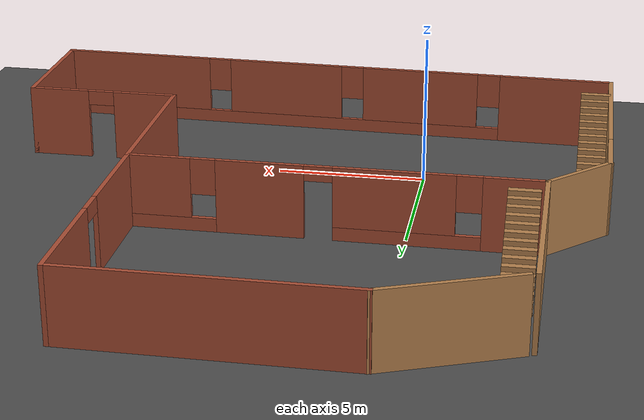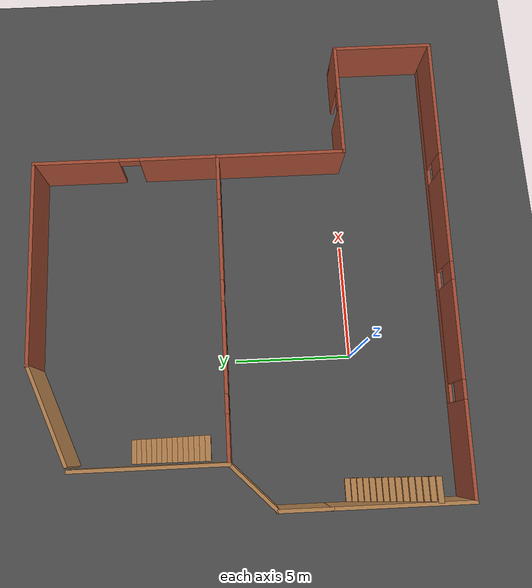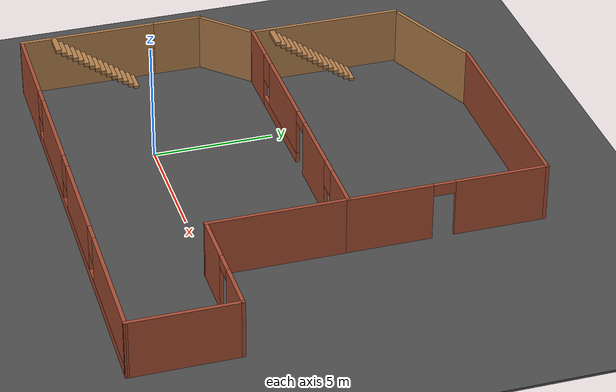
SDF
<sdf version="1.6">
 <world name="default">
  <light name="sun" type="directional">
   <pose>0 0 10 0 -0 0</pose>
   <diffuse>0.8 0.8 0.8 1</diffuse>
   <specular>0.2 0.2 0.2 1</specular>
   <attenuation>
    <range>1000</range>
    <constant>0.9</constant>
    <linear>0.01</linear>
    <quadratic>0.001</quadratic>
   </attenuation>
   <direction>-0.5 0.1 -0.9</direction>
  </light>
  <model name="ground_plane">
   <static>1</static>
   <link name="link">
    <collision name="collision">
     <geometry><plane><normal>0 0 1</normal><size>100 100</size></plane></geometry>
     <surface>
      <contact><collide_bitmask>65535</collide_bitmask></contact>
      <friction><ode><mu>100</mu><mu2>50</mu2></ode></friction>
     </surface>
    </collision>
    <visual name="visual">
     <cast_shadows>0</cast_shadows>
     <geometry><plane><normal>0 0 1</normal><size>100 100</size></plane></geometry>
     <material>
      <script><uri>file://media/materials/scripts/gazebo.material</uri><name>Gazebo/Grey</name></script>
     </material>
    </visual>
   </link>
  </model>
  <model name="asphalt_plane">
   <static>1</static>
   <link name="link">
    <collision name="collision"><geometry><box><size>200 200 0.1</size></box></geometry></collision>
    <visual name="visual">
     <cast_shadows>0</cast_shadows>
     <geometry><box><size>200 200 0.1</size></box></geometry>
     <material>
      <script>
       <uri>model://asphalt_plane/materials/scripts</uri>
       <uri>model://asphalt_plane/materials/textures</uri>
       <name>vrc/asphalt</name>
      </script>
     </material>
    </visual>
   </link>
  </model>
  <physics name="default_physics" default="0" type="ode">
   <ode>
    <solver>
     <type>quick</type>
     <iters>10</iters>
     <sor>1.3</sor>
     <use_dynamic_moi_rescaling>0</use_dynamic_moi_rescaling>
    </solver>
    <constraints>
     <cfm>0</cfm>
     <erp>0.2</erp>
     <contact_max_correcting_vel>100</contact_max_correcting_vel>
     <contact_surface_layer>0.001</contact_surface_layer>
    </constraints>
   </ode>
   <max_step_size>0.004</max_step_size>
   <real_time_factor>1</real_time_factor>
   <real_time_update_rate>250</real_time_update_rate>
  </physics>
  <gravity>0 0 -9.8066</gravity>
  <magnetic_field>6e-06 2.3e-05 -4.2e-05</magnetic_field>
  <atmosphere type="adiabatic"/>
  <scene><ambient>0.4 0.4 0.4 1</ambient><background>0.7 0.7 0.7 1</background><shadows>1</shadows></scene>
  <spherical_coordinates>
   <surface_model>EARTH_WGS84</surface_model>
   <latitude_deg>0</latitude_deg>
   <longitude_deg>0</longitude_deg>
   <elevation>0</elevation>
   <heading_deg>0</heading_deg>
  </spherical_coordinates>
  <model name="Mundo_pequeno">
   <pose>3.84432 4.52778 0 0 -0 0</pose>
   <link name="Stairs_1">
    <visual name="Stairs_1_Visual_0">
     <pose>-7.50565 4.98845 0.083333 0 -0 0</pose>
     <geometry><box><size>1 0.233333 0.166667</size></box></geometry>
     <material>
      <script><uri>file://media/materials/scripts/gazebo.material</uri><name>Gazebo/Wood</name></script>
      <ambient>1 1 1 1</ambient>
     </material>
     <meta><layer>0</layer></meta>
    </visual>
    <collision name="Stairs_1_Collision_0">
     <geometry><box><size>1 0.233333 0.166667</size></box></geometry>
     <pose>-7.50565 4.98845 0.083333 0 -0 0</pose>
    </collision>
    <visual name="Stairs_1_Visual_1">
     <pose>-7.50565 4.75511 0.25 0 -0 0</pose>
     <geometry><box><size>1 0.233333 0.166667</size></box></geometry>
     <material>
      <script><uri>file://media/materials/scripts/gazebo.material</uri><name>Gazebo/Wood</name></script>
      <ambient>1 1 1 1</ambient>
     </material>
     <meta><layer>0</layer></meta>
    </visual>
    <collision name="Stairs_1_Collision_1">
     <geometry><box><size>1 0.233333 0.166667</size></box></geometry>
     <pose>-7.50565 4.75511 0.25 0 -0 0</pose>
    </collision>
    <visual name="Stairs_1_Visual_2">
     <pose>-7.50565 4.52178 0.416667 0 -0 0</pose>
     <geometry><box><size>1 0.233333 0.166667</size></box></geometry>
     <material>
      <script><uri>file://media/materials/scripts/gazebo.material</uri><name>Gazebo/Wood</name></script>
      <ambient>1 1 1 1</ambient>
     </material>
     <meta><layer>0</layer></meta>
    </visual>
    <collision name="Stairs_1_Collision_2">
     <geometry><box><size>1 0.233333 0.166667</size></box></geometry>
     <pose>-7.50565 4.52178 0.416667 0 -0 0</pose>
    </collision>
    <visual name="Stairs_1_Visual_3">
     <pose>-7.50565 4.28845 0.583333 0 -0 0</pose>
     <geometry><box><size>1 0.233333 0.166667</size></box></geometry>
     <material>
      <script><uri>file://media/materials/scripts/gazebo.material</uri><name>Gazebo/Wood</name></script>
      <ambient>1 1 1 1</ambient>
     </material>
     <meta><layer>0</layer></meta>
    </visual>
    <collision name="Stairs_1_Collision_3">
     <geometry><box><size>1 0.233333 0.166667</size></box></geometry>
     <pose>-7.50565 4.28845 0.583333 0 -0 0</pose>
    </collision>
    <visual name="Stairs_1_Visual_4">
     <pose>-7.50565 4.05511 0.75 0 -0 0</pose>
     <geometry><box><size>1 0.233333 0.166667</size></box></geometry>
     <material>
      <script><uri>file://media/materials/scripts/gazebo.material</uri><name>Gazebo/Wood</name></script>
      <ambient>1 1 1 1</ambient>
     </material>
     <meta><layer>0</layer></meta>
    </visual>
    <collision name="Stairs_1_Collision_4">
     <geometry><box><size>1 0.233333 0.166667</size></box></geometry>
     <pose>-7.50565 4.05511 0.75 0 -0 0</pose>
    </collision>
    <visual name="Stairs_1_Visual_5">
     <pose>-7.50565 3.82178 0.916667 0 -0 0</pose>
     <geometry><box><size>1 0.233333 0.166667</size></box></geometry>
     <material>
      <script><uri>file://media/materials/scripts/gazebo.material</uri><name>Gazebo/Wood</name></script>
      <ambient>1 1 1 1</ambient>
     </material>
     <meta><layer>0</layer></meta>
    </visual>
    <collision name="Stairs_1_Collision_5">
     <geometry><box><size>1 0.233333 0.166667</size></box></geometry>
     <pose>-7.50565 3.82178 0.916667 0 -0 0</pose>
    </collision>
    <visual name="Stairs_1_Visual_6">
     <pose>-7.50565 3.58845 1.08333 0 -0 0</pose>
     <geometry><box><size>1 0.233333 0.166667</size></box></geometry>
     <material>
      <script><uri>file://media/materials/scripts/gazebo.material</uri><name>Gazebo/Wood</name></script>
      <ambient>1 1 1 1</ambient>
     </material>
     <meta><layer>0</layer></meta>
    </visual>
    <collision name="Stairs_1_Collision_6">
     <geometry><box><size>1 0.233333 0.166667</size></box></geometry>
     <pose>-7.50565 3.58845 1.08333 0 -0 0</pose>
    </collision>
    <visual name="Stairs_1_Visual_7">
     <pose>-7.50565 3.35511 1.25 0 -0 0</pose>
     <geometry><box><size>1 0.233333 0.166667</size></box></geometry>
     <material>
      <script><uri>file://media/materials/scripts/gazebo.material</uri><name>Gazebo/Wood</name></script>
      <ambient>1 1 1 1</ambient>
     </material>
     <meta><layer>0</layer></meta>
    </visual>
    <collision name="Stairs_1_Collision_7">
     <geometry><box><size>1 0.233333 0.166667</size></box></geometry>
     <pose>-7.50565 3.35511 1.25 0 -0 0</pose>
    </collision>
    <visual name="Stairs_1_Visual_8">
     <pose>-7.50565 3.12178 1.41667 0 -0 0</pose>
     <geometry><box><size>1 0.233333 0.166667</size></box></geometry>
     <material>
      <script><uri>file://media/materials/scripts/gazebo.material</uri><name>Gazebo/Wood</name></script>
      <ambient>1 1 1 1</ambient>
     </material>
     <meta><layer>0</layer></meta>
    </visual>
    <collision name="Stairs_1_Collision_8">
     <geometry><box><size>1 0.233333 0.166667</size></box></geometry>
     <pose>-7.50565 3.12178 1.41667 0 -0 0</pose>
    </collision>
    <visual name="Stairs_1_Visual_9">
     <pose>-7.50565 2.88845 1.58333 0 -0 0</pose>
     <geometry><box><size>1 0.233333 0.166667</size></box></geometry>
     <material>
      <script><uri>file://media/materials/scripts/gazebo.material</uri><name>Gazebo/Wood</name></script>
      <ambient>1 1 1 1</ambient>
     </material>
     <meta><layer>0</layer></meta>
    </visual>
    <collision name="Stairs_1_Collision_9">
     <geometry><box><size>1 0.233333 0.166667</size></box></geometry>
     <pose>-7.50565 2.88845 1.58333 0 -0 0</pose>
    </collision>
    <visual name="Stairs_1_Visual_10">
     <pose>-7.50565 2.65511 1.75 0 -0 0</pose>
     <geometry><box><size>1 0.233333 0.166667</size></box></geometry>
     <material>
      <script><uri>file://media/materials/scripts/gazebo.material</uri><name>Gazebo/Wood</name></script>
      <ambient>1 1 1 1</ambient>
     </material>
     <meta><layer>0</layer></meta>
    </visual>
    <collision name="Stairs_1_Collision_10">
     <geometry><box><size>1 0.233333 0.166667</size></box></geometry>
     <pose>-7.50565 2.65511 1.75 0 -0 0</pose>
    </collision>
    <visual name="Stairs_1_Visual_11">
     <pose>-7.50565 2.42178 1.91667 0 -0 0</pose>
     <geometry><box><size>1 0.233333 0.166667</size></box></geometry>
     <material>
      <script><uri>file://media/materials/scripts/gazebo.material</uri><name>Gazebo/Wood</name></script>
      <ambient>1 1 1 1</ambient>
     </material>
     <meta><layer>0</layer></meta>
    </visual>
    <collision name="Stairs_1_Collision_11">
     <geometry><box><size>1 0.233333 0.166667</size></box></geometry>
     <pose>-7.50565 2.42178 1.91667 0 -0 0</pose>
    </collision>
    <visual name="Stairs_1_Visual_12">
     <pose>-7.50565 2.18845 2.08333 0 -0 0</pose>
     <geometry><box><size>1 0.233333 0.166667</size></box></geometry>
     <material>
      <script><uri>file://media/materials/scripts/gazebo.material</uri><name>Gazebo/Wood</name></script>
      <ambient>1 1 1 1</ambient>
     </material>
     <meta><layer>0</layer></meta>
    </visual>
    <collision name="Stairs_1_Collision_12">
     <geometry><box><size>1 0.233333 0.166667</size></box></geometry>
     <pose>-7.50565 2.18845 2.08333 0 -0 0</pose>
    </collision>
    <visual name="Stairs_1_Visual_13">
     <pose>-7.50565 1.95511 2.25 0 -0 0</pose>
     <geometry><box><size>1 0.233333 0.166667</size></box></geometry>
     <material>
      <script><uri>file://media/materials/scripts/gazebo.material</uri><name>Gazebo/Wood</name></script>
      <ambient>1 1 1 1</ambient>
     </material>
     <meta><layer>0</layer></meta>
    </visual>
    <collision name="Stairs_1_Collision_13">
     <geometry><box><size>1 0.233333 0.166667</size></box></geometry>
     <pose>-7.50565 1.95511 2.25 0 -0 0</pose>
    </collision>
    <visual name="Stairs_1_Visual_14">
     <pose>-7.50565 1.72178 2.41667 0 -0 0</pose>
     <geometry><box><size>1 0.233333 0.166667</size></box></geometry>
     <material>
      <script><uri>file://media/materials/scripts/gazebo.material</uri><name>Gazebo/Wood</name></script>
      <ambient>1 1 1 1</ambient>
     </material>
     <meta><layer>0</layer></meta>
    </visual>
    <collision name="Stairs_1_Collision_14">
     <geometry><box><size>1 0.233333 0.166667</size></box></geometry>
     <pose>-7.50565 1.72178 2.41667 0 -0 0</pose>
    </collision>
   </link>
   <link name="Stairs_2">
    <visual name="Stairs_2_Visual_0">
     <pose>-9.48524 -3.99997 0.083333 0 -0 0</pose>
     <geometry><box><size>1 0.233333 0.166667</size></box></geometry>
     <material>
      <script><uri>file://media/materials/scripts/gazebo.material</uri><name>Gazebo/Wood</name></script>
      <ambient>1 1 1 1</ambient>
     </material>
     <meta><layer>0</layer></meta>
    </visual>
    <collision name="Stairs_2_Collision_0">
     <geometry><box><size>1 0.233333 0.166667</size></box></geometry>
     <pose>-9.48524 -3.99997 0.083333 0 -0 0</pose>
    </collision>
    <visual name="Stairs_2_Visual_1">
     <pose>-9.48524 -4.23331 0.25 0 -0 0</pose>
     <geometry><box><size>1 0.233333 0.166667</size></box></geometry>
     <material>
      <script><uri>file://media/materials/scripts/gazebo.material</uri><name>Gazebo/Wood</name></script>
      <ambient>1 1 1 1</ambient>
     </material>
     <meta><layer>0</layer></meta>
    </visual>
    <collision name="Stairs_2_Collision_1">
     <geometry><box><size>1 0.233333 0.166667</size></box></geometry>
     <pose>-9.48524 -4.23331 0.25 0 -0 0</pose>
    </collision>
    <visual name="Stairs_2_Visual_2">
     <pose>-9.48524 -4.46664 0.416667 0 -0 0</pose>
     <geometry><box><size>1 0.233333 0.166667</size></box></geometry>
     <material>
      <script><uri>file://media/materials/scripts/gazebo.material</uri><name>Gazebo/Wood</name></script>
      <ambient>1 1 1 1</ambient>
     </material>
     <meta><layer>0</layer></meta>
    </visual>
    <collision name="Stairs_2_Collision_2">
     <geometry><box><size>1 0.233333 0.166667</size></box></geometry>
     <pose>-9.48524 -4.46664 0.416667 0 -0 0</pose>
    </collision>
    <visual name="Stairs_2_Visual_3">
     <pose>-9.48524 -4.69997 0.583333 0 -0 0</pose>
     <geometry><box><size>1 0.233333 0.166667</size></box></geometry>
     <material>
      <script><uri>file://media/materials/scripts/gazebo.material</uri><name>Gazebo/Wood</name></script>
      <ambient>1 1 1 1</ambient>
     </material>
     <meta><layer>0</layer></meta>
    </visual>
    <collision name="Stairs_2_Collision_3">
     <geometry><box><size>1 0.233333 0.166667</size></box></geometry>
     <pose>-9.48524 -4.69997 0.583333 0 -0 0</pose>
    </collision>
    <visual name="Stairs_2_Visual_4">
     <pose>-9.48524 -4.93331 0.75 0 -0 0</pose>
     <geometry><box><size>1 0.233333 0.166667</size></box></geometry>
     <material>
      <script><uri>file://media/materials/scripts/gazebo.material</uri><name>Gazebo/Wood</name></script>
      <ambient>1 1 1 1</ambient>
     </material>
     <meta><layer>0</layer></meta>
    </visual>
    <collision name="Stairs_2_Collision_4">
     <geometry><box><size>1 0.233333 0.166667</size></box></geometry>
     <pose>-9.48524 -4.93331 0.75 0 -0 0</pose>
    </collision>
    <visual name="Stairs_2_Visual_5">
     <pose>-9.48524 -5.16664 0.916667 0 -0 0</pose>
     <geometry><box><size>1 0.233333 0.166667</size></box></geometry>
     <material>
      <script><uri>file://media/materials/scripts/gazebo.material</uri><name>Gazebo/Wood</name></script>
      <ambient>1 1 1 1</ambient>
     </material>
     <meta><layer>0</layer></meta>
    </visual>
    <collision name="Stairs_2_Collision_5">
     <geometry><box><size>1 0.233333 0.166667</size></box></geometry>
     <pose>-9.48524 -5.16664 0.916667 0 -0 0</pose>
    </collision>
    <visual name="Stairs_2_Visual_6">
     <pose>-9.48524 -5.39997 1.08333 0 -0 0</pose>
     <geometry><box><size>1 0.233333 0.166667</size></box></geometry>
     <material>
      <script><uri>file://media/materials/scripts/gazebo.material</uri><name>Gazebo/Wood</name></script>
      <ambient>1 1 1 1</ambient>
     </material>
     <meta><layer>0</layer></meta>
    </visual>
    <collision name="Stairs_2_Collision_6">
     <geometry><box><size>1 0.233333 0.166667</size></box></geometry>
     <pose>-9.48524 -5.39997 1.08333 0 -0 0</pose>
    </collision>
    <visual name="Stairs_2_Visual_7">
     <pose>-9.48524 -5.63331 1.25 0 -0 0</pose>
     <geometry><box><size>1 0.233333 0.166667</size></box></geometry>
     <material>
      <script><uri>file://media/materials/scripts/gazebo.material</uri><name>Gazebo/Wood</name></script>
      <ambient>1 1 1 1</ambient>
     </material>
     <meta><layer>0</layer></meta>
    </visual>
    <collision name="Stairs_2_Collision_7">
     <geometry><box><size>1 0.233333 0.166667</size></box></geometry>
     <pose>-9.48524 -5.63331 1.25 0 -0 0</pose>
    </collision>
    <visual name="Stairs_2_Visual_8">
     <pose>-9.48524 -5.86664 1.41667 0 -0 0</pose>
     <geometry><box><size>1 0.233333 0.166667</size></box></geometry>
     <material>
      <script><uri>file://media/materials/scripts/gazebo.material</uri><name>Gazebo/Wood</name></script>
      <ambient>1 1 1 1</ambient>
     </material>
     <meta><layer>0</layer></meta>
    </visual>
    <collision name="Stairs_2_Collision_8">
     <geometry><box><size>1 0.233333 0.166667</size></box></geometry>
     <pose>-9.48524 -5.86664 1.41667 0 -0 0</pose>
    </collision>
    <visual name="Stairs_2_Visual_9">
     <pose>-9.48524 -6.09997 1.58333 0 -0 0</pose>
     <geometry><box><size>1 0.233333 0.166667</size></box></geometry>
     <material>
      <script><uri>file://media/materials/scripts/gazebo.material</uri><name>Gazebo/Wood</name></script>
      <ambient>1 1 1 1</ambient>
     </material>
     <meta><layer>0</layer></meta>
    </visual>
    <collision name="Stairs_2_Collision_9">
     <geometry><box><size>1 0.233333 0.166667</size></box></geometry>
     <pose>-9.48524 -6.09997 1.58333 0 -0 0</pose>
    </collision>
    <visual name="Stairs_2_Visual_10">
     <pose>-9.48524 -6.33331 1.75 0 -0 0</pose>
     <geometry><box><size>1 0.233333 0.166667</size></box></geometry>
     <material>
      <script><uri>file://media/materials/scripts/gazebo.material</uri><name>Gazebo/Wood</name></script>
      <ambient>1 1 1 1</ambient>
     </material>
     <meta><layer>0</layer></meta>
    </visual>
    <collision name="Stairs_2_Collision_10">
     <geometry><box><size>1 0.233333 0.166667</size></box></geometry>
     <pose>-9.48524 -6.33331 1.75 0 -0 0</pose>
    </collision>
    <visual name="Stairs_2_Visual_11">
     <pose>-9.48524 -6.56664 1.91667 0 -0 0</pose>
     <geometry><box><size>1 0.233333 0.166667</size></box></geometry>
     <material>
      <script><uri>file://media/materials/scripts/gazebo.material</uri><name>Gazebo/Wood</name></script>
      <ambient>1 1 1 1</ambient>
     </material>
     <meta><layer>0</layer></meta>
    </visual>
    <collision name="Stairs_2_Collision_11">
     <geometry><box><size>1 0.233333 0.166667</size></box></geometry>
     <pose>-9.48524 -6.56664 1.91667 0 -0 0</pose>
    </collision>
    <visual name="Stairs_2_Visual_12">
     <pose>-9.48524 -6.79997 2.08333 0 -0 0</pose>
     <geometry><box><size>1 0.233333 0.166667</size></box></geometry>
     <material>
      <script><uri>file://media/materials/scripts/gazebo.material</uri><name>Gazebo/Wood</name></script>
      <ambient>1 1 1 1</ambient>
     </material>
     <meta><layer>0</layer></meta>
    </visual>
    <collision name="Stairs_2_Collision_12">
     <geometry><box><size>1 0.233333 0.166667</size></box></geometry>
     <pose>-9.48524 -6.79997 2.08333 0 -0 0</pose>
    </collision>
    <visual name="Stairs_2_Visual_13">
     <pose>-9.48524 -7.03331 2.25 0 -0 0</pose>
     <geometry><box><size>1 0.233333 0.166667</size></box></geometry>
     <material>
      <script><uri>file://media/materials/scripts/gazebo.material</uri><name>Gazebo/Wood</name></script>
      <ambient>1 1 1 1</ambient>
     </material>
     <meta><layer>0</layer></meta>
    </visual>
    <collision name="Stairs_2_Collision_13">
     <geometry><box><size>1 0.233333 0.166667</size></box></geometry>
     <pose>-9.48524 -7.03331 2.25 0 -0 0</pose>
    </collision>
    <visual name="Stairs_2_Visual_14">
     <pose>-9.48524 -7.26664 2.41667 0 -0 0</pose>
     <geometry><box><size>1 0.233333 0.166667</size></box></geometry>
     <material>
      <script><uri>file://media/materials/scripts/gazebo.material</uri><name>Gazebo/Wood</name></script>
      <ambient>1 1 1 1</ambient>
     </material>
     <meta><layer>0</layer></meta>
    </visual>
    <collision name="Stairs_2_Collision_14">
     <geometry><box><size>1 0.233333 0.166667</size></box></geometry>
     <pose>-9.48524 -7.26664 2.41667 0 -0 0</pose>
    </collision>
   </link>
   <link name="Wall_21">
    <collision name="Wall_21_Collision">
     <geometry><box><size>2.25 0.15 2.5</size></box></geometry>
     <pose>0 0 1.25 0 -0 0</pose>
    </collision>
    <visual name="Wall_21_Visual">
     <pose>0 0 1.25 0 -0 0</pose>
     <geometry><box><size>2.25 0.15 2.5</size></box></geometry>
     <material>
      <script><uri>file://media/materials/scripts/gazebo.material</uri><name>Gazebo/Wood</name></script>
      <ambient>1 1 1 1</ambient>
     </material>
     <meta><layer>0</layer></meta>
    </visual>
    <pose>-10.0045 -1.97413 0 0 -0 1.5708</pose>
   </link>
   <link name="Wall_22">
    <collision name="Wall_22_Collision">
     <geometry><box><size>2.75 0.15 2.5</size></box></geometry>
     <pose>0 0 1.25 0 -0 0</pose>
    </collision>
    <visual name="Wall_22_Visual">
     <pose>0 0 1.25 0 -0 0</pose>
     <geometry><box><size>2.75 0.15 2.5</size></box></geometry>
     <material>
      <script><uri>file://media/materials/scripts/gazebo.material</uri><name>Gazebo/Wood</name></script>
      <ambient>1 1 1 1</ambient>
     </material>
     <meta><layer>0</layer></meta>
    </visual>
    <pose>-9.08523 -0.004896 0 0 -0 0.785398</pose>
   </link>
   <link name="Wall_23">
    <pose>-1.61599 0.914343 0 0 -0 0</pose>
    <visual name="Wall_23_Visual_0">
     <pose>-5.61042 0 1.25 0 -0 0</pose>
     <geometry><box><size>2.02916 0.15 2.5</size></box></geometry>
     <material>
      <script><uri>file://media/materials/scripts/gazebo.material</uri><name>Gazebo/Bricks</name></script>
      <ambient>1 1 1 1</ambient>
     </material>
     <meta><layer>0</layer></meta>
    </visual>
    <collision name="Wall_23_Collision_0">
     <geometry><box><size>2.02916 0.15 2.5</size></box></geometry>
     <pose>-5.61042 0 1.25 0 -0 0</pose>
    </collision>
    <visual name="Wall_23_Visual_1">
     <pose>2.32954 0 1.25 0 -0 0</pose>
     <geometry><box><size>2.80479 0.15 2.5</size></box></geometry>
     <material>
      <script><uri>file://media/materials/scripts/gazebo.material</uri><name>Gazebo/Bricks</name></script>
      <ambient>1 1 1 1</ambient>
     </material>
     <meta><layer>0</layer></meta>
    </visual>
    <collision name="Wall_23_Collision_1">
     <geometry><box><size>2.80479 0.15 2.5</size></box></geometry>
     <pose>2.32954 0 1.25 0 -0 0</pose>
    </collision>
    <visual name="Wall_23_Visual_2">
     <pose>-2.28435 0 0.25 0 -0 0</pose>
     <geometry><box><size>4.62299 0.15 0.5</size></box></geometry>
     <material>
      <script><uri>file://media/materials/scripts/gazebo.material</uri><name>Gazebo/Bricks</name></script>
      <ambient>1 1 1 1</ambient>
     </material>
     <meta><layer>0</layer></meta>
    </visual>
    <collision name="Wall_23_Collision_2">
     <geometry><box><size>4.62299 0.15 0.5</size></box></geometry>
     <pose>-2.28435 0 0.25 0 -0 0</pose>
    </collision>
    <visual name="Wall_23_Visual_3">
     <pose>5.17847 0 0.25 0 -0 0</pose>
     <geometry><box><size>2.89306 0.15 0.5</size></box></geometry>
     <material>
      <script><uri>file://media/materials/scripts/gazebo.material</uri><name>Gazebo/Bricks</name></script>
      <ambient>1 1 1 1</ambient>
     </material>
     <meta><layer>0</layer></meta>
    </visual>
    <collision name="Wall_23_Collision_3">
     <geometry><box><size>2.89306 0.15 0.5</size></box></geometry>
     <pose>5.17847 0 0.25 0 -0 0</pose>
    </collision>
    <visual name="Wall_23_Visual_4">
     <pose>-1.88435 0 1.5 0 -0 0</pose>
     <geometry><box><size>3.82299 0.15 2</size></box></geometry>
     <material>
      <script><uri>file://media/materials/scripts/gazebo.material</uri><name>Gazebo/Bricks</name></script>
      <ambient>1 1 1 1</ambient>
     </material>
     <meta><layer>0</layer></meta>
    </visual>
    <collision name="Wall_23_Collision_4">
     <geometry><box><size>3.82299 0.15 2</size></box></geometry>
     <pose>-1.88435 0 1.5 0 -0 0</pose>
    </collision>
    <visual name="Wall_23_Visual_5">
     <pose>-1.88435 0 1.5 0 -0 0</pose>
     <geometry><box><size>3.82299 0.15 2</size></box></geometry>
     <material>
      <script><uri>file://media/materials/scripts/gazebo.material</uri><name>Gazebo/Bricks</name></script>
      <ambient>1 1 1 1</ambient>
     </material>
     <meta><layer>0</layer></meta>
    </visual>
    <collision name="Wall_23_Collision_5">
     <geometry><box><size>3.82299 0.15 2</size></box></geometry>
     <pose>-1.88435 0 1.5 0 -0 0</pose>
    </collision>
    <visual name="Wall_23_Visual_6">
     <pose>5.57847 0 1.5 0 -0 0</pose>
     <geometry><box><size>2.09306 0.15 2</size></box></geometry>
     <material>
      <script><uri>file://media/materials/scripts/gazebo.material</uri><name>Gazebo/Bricks</name></script>
      <ambient>1 1 1 1</ambient>
     </material>
     <meta><layer>0</layer></meta>
    </visual>
    <collision name="Wall_23_Collision_6">
     <geometry><box><size>2.09306 0.15 2</size></box></geometry>
     <pose>5.57847 0 1.5 0 -0 0</pose>
    </collision>
    <visual name="Wall_23_Visual_7">
     <pose>-4.19584 0 1.9 0 -0 0</pose>
     <geometry><box><size>0.8 0.15 1.2</size></box></geometry>
     <material>
      <script><uri>file://media/materials/scripts/gazebo.material</uri><name>Gazebo/Bricks</name></script>
      <ambient>1 1 1 1</ambient>
     </material>
     <meta><layer>0</layer></meta>
    </visual>
    <collision name="Wall_23_Collision_7">
     <geometry><box><size>0.8 0.15 1.2</size></box></geometry>
     <pose>-4.19584 0 1.9 0 -0 0</pose>
    </collision>
    <visual name="Wall_23_Visual_8">
     <pose>4.13194 0 1.9 0 -0 0</pose>
     <geometry><box><size>0.8 0.15 1.2</size></box></geometry>
     <material>
      <script><uri>file://media/materials/scripts/gazebo.material</uri><name>Gazebo/Bricks</name></script>
      <ambient>1 1 1 1</ambient>
     </material>
     <meta><layer>0</layer></meta>
    </visual>
    <collision name="Wall_23_Collision_8">
     <geometry><box><size>0.8 0.15 1.2</size></box></geometry>
     <pose>4.13194 0 1.9 0 -0 0</pose>
    </collision>
    <visual name="Wall_23_Visual_9">
     <pose>0.477144 0 2.25 0 -0 0</pose>
     <geometry><box><size>0.9 0.15 0.5</size></box></geometry>
     <material>
      <script><uri>file://media/materials/scripts/gazebo.material</uri><name>Gazebo/Bricks</name></script>
      <ambient>1 1 1 1</ambient>
     </material>
     <meta><layer>0</layer></meta>
    </visual>
    <collision name="Wall_23_Collision_9">
     <geometry><box><size>0.9 0.15 0.5</size></box></geometry>
     <pose>0.477144 0 2.25 0 -0 0</pose>
    </collision>
    <visual name="Wall_23_Visual_10">
     <pose>0.477144 0 2.25 0 -0 0</pose>
     <geometry><box><size>0.9 0.15 0.5</size></box></geometry>
     <material>
      <script><uri>file://media/materials/scripts/gazebo.material</uri><name>Gazebo/Bricks</name></script>
      <ambient>1 1 1 1</ambient>
     </material>
     <meta><layer>0</layer></meta>
    </visual>
    <collision name="Wall_23_Collision_10">
     <geometry><box><size>0.9 0.15 0.5</size></box></geometry>
     <pose>0.477144 0 2.25 0 -0 0</pose>
    </collision>
   </link>
   <link name="Wall_24">
    <collision name="Wall_24_Collision">
     <geometry><box><size>5.75 0.15 2.5</size></box></geometry>
     <pose>0 0 1.25 0 -0 0</pose>
    </collision>
    <visual name="Wall_24_Visual">
     <pose>0 0 1.25 0 -0 0</pose>
     <geometry><box><size>5.75 0.15 2.5</size></box></geometry>
     <material>
      <script><uri>file://media/materials/scripts/gazebo.material</uri><name>Gazebo/Bricks</name></script>
      <ambient>1 1 1 1</ambient>
     </material>
     <meta><layer>0</layer></meta>
    </visual>
    <pose>4.93401 -1.88566 0 0 -0 -1.5708</pose>
   </link>
   <link name="Wall_25">
    <pose>7.48401 -4.68566 0 0 -0 0</pose>
    <visual name="Wall_25_Visual_0">
     <pose>-1.50924 0 1.25 0 -0 0</pose>
     <geometry><box><size>2.23152 0.15 2.5</size></box></geometry>
     <material>
      <script><uri>file://media/materials/scripts/gazebo.material</uri><name>Gazebo/Bricks</name></script>
      <ambient>1 1 1 1</ambient>
     </material>
     <meta><layer>0</layer></meta>
    </visual>
    <collision name="Wall_25_Collision_0">
     <geometry><box><size>2.23152 0.15 2.5</size></box></geometry>
     <pose>-1.50924 0 1.25 0 -0 0</pose>
    </collision>
    <visual name="Wall_25_Visual_1">
     <pose>1.56576 0 1.25 0 -0 0</pose>
     <geometry><box><size>2.11848 0.15 2.5</size></box></geometry>
     <material>
      <script><uri>file://media/materials/scripts/gazebo.material</uri><name>Gazebo/Bricks</name></script>
      <ambient>1 1 1 1</ambient>
     </material>
     <meta><layer>0</layer></meta>
    </visual>
    <collision name="Wall_25_Collision_1">
     <geometry><box><size>2.11848 0.15 2.5</size></box></geometry>
     <pose>1.56576 0 1.25 0 -0 0</pose>
    </collision>
    <visual name="Wall_25_Visual_2">
     <pose>0.05652 0 2.25 0 -0 0</pose>
     <geometry><box><size>0.9 0.15 0.5</size></box></geometry>
     <material>
      <script><uri>file://media/materials/scripts/gazebo.material</uri><name>Gazebo/Bricks</name></script>
      <ambient>1 1 1 1</ambient>
     </material>
     <meta><layer>0</layer></meta>
    </visual>
    <collision name="Wall_25_Collision_2">
     <geometry><box><size>0.9 0.15 0.5</size></box></geometry>
     <pose>0.05652 0 2.25 0 -0 0</pose>
    </collision>
   </link>
   <link name="Wall_26">
    <collision name="Wall_26_Collision">
     <geometry><box><size>4.5 0.15 2.5</size></box></geometry>
     <pose>0 0 1.25 0 -0 0</pose>
    </collision>
    <visual name="Wall_26_Visual">
     <pose>0 0 1.25 0 -0 0</pose>
     <geometry><box><size>4.5 0.15 2.5</size></box></geometry>
     <material>
      <script><uri>file://media/materials/scripts/gazebo.material</uri><name>Gazebo/Bricks</name></script>
      <ambient>1 1 1 1</ambient>
     </material>
     <meta><layer>0</layer></meta>
    </visual>
    <pose>10.034 -6.86066 0 0 -0 -1.5708</pose>
   </link>
   <link name="Wall_28">
    <pose>4.93401 4.96434 0 0 -0 1.5708</pose>
    <visual name="Wall_28_Visual_0">
     <pose>-2.36983 0 1.25 0 -0 0</pose>
     <geometry><box><size>3.51034 0.15 2.5</size></box></geometry>
     <material>
      <script><uri>file://media/materials/scripts/gazebo.material</uri><name>Gazebo/Bricks</name></script>
      <ambient>1 1 1 1</ambient>
     </material>
     <meta><layer>0</layer></meta>
    </visual>
    <collision name="Wall_28_Collision_0">
     <geometry><box><size>3.51034 0.15 2.5</size></box></geometry>
     <pose>-2.36983 0 1.25 0 -0 0</pose>
    </collision>
    <visual name="Wall_28_Visual_1">
     <pose>2.20517 0 1.25 0 -0 0</pose>
     <geometry><box><size>3.83966 0.15 2.5</size></box></geometry>
     <material>
      <script><uri>file://media/materials/scripts/gazebo.material</uri><name>Gazebo/Bricks</name></script>
      <ambient>1 1 1 1</ambient>
     </material>
     <meta><layer>0</layer></meta>
    </visual>
    <collision name="Wall_28_Collision_1">
     <geometry><box><size>3.83966 0.15 2.5</size></box></geometry>
     <pose>2.20517 0 1.25 0 -0 0</pose>
    </collision>
    <visual name="Wall_28_Visual_2">
     <pose>-0.164661 0 2.25 0 -0 0</pose>
     <geometry><box><size>0.9 0.15 0.5</size></box></geometry>
     <material>
      <script><uri>file://media/materials/scripts/gazebo.material</uri><name>Gazebo/Bricks</name></script>
      <ambient>1 1 1 1</ambient>
     </material>
     <meta><layer>0</layer></meta>
    </visual>
    <collision name="Wall_28_Collision_2">
     <geometry><box><size>0.9 0.15 0.5</size></box></geometry>
     <pose>-0.164661 0 2.25 0 -0 0</pose>
    </collision>
   </link>
   <link name="Wall_29">
    <collision name="Wall_29_Collision">
     <geometry><box><size>9 0.15 2.5</size></box></geometry>
     <pose>0 0 1.25 0 -0 0</pose>
    </collision>
    <visual name="Wall_29_Visual">
     <pose>0 0 1.25 0 -0 0</pose>
     <geometry><box><size>9 0.15 2.5</size></box></geometry>
     <material>
      <script><uri>file://media/materials/scripts/gazebo.material</uri><name>Gazebo/Bricks</name></script>
      <ambient>1 1 1 1</ambient>
     </material>
     <meta><layer>0</layer></meta>
    </visual>
    <pose>0.509009 9.01434 0 0 -0 3.14159</pose>
   </link>
   <link name="Wall_31">
    <collision name="Wall_31_Collision">
     <geometry><box><size>6.5 0.15 2.5</size></box></geometry>
     <pose>0 0 1.25 0 -0 0</pose>
    </collision>
    <visual name="Wall_31_Visual">
     <pose>0 0 1.25 0 -0 0</pose>
     <geometry><box><size>6.5 0.15 2.5</size></box></geometry>
     <material>
      <script><uri>file://media/materials/scripts/gazebo.material</uri><name>Gazebo/Wood</name></script>
      <ambient>1 1 1 1</ambient>
     </material>
     <meta><layer>0</layer></meta>
    </visual>
    <pose>-8.16599 4.08934 0 0 -0 1.5708</pose>
   </link>
   <link name="Wall_51">
    <collision name="Wall_51_Collision">
     <geometry><box><size>5.75 0.15 2.5</size></box></geometry>
     <pose>0 0 1.25 0 -0 0</pose>
    </collision>
    <visual name="Wall_51_Visual">
     <pose>0 0 1.25 0 -0 0</pose>
     <geometry><box><size>5.75 0.15 2.5</size></box></geometry>
     <material>
      <script><uri>file://media/materials/scripts/gazebo.material</uri><name>Gazebo/Wood</name></script>
      <ambient>1 1 1 1</ambient>
     </material>
     <meta><layer>0</layer></meta>
    </visual>
    <pose>-10.0045 -5.82414 0 0 -0 -1.5708</pose>
   </link>
   <link name="Wall_52">
    <pose>0.014771 -8.8299 0 0 -0 -0.020534</pose>
    <visual name="Wall_52_Visual_0">
     <pose>-8.0981 0 1.25 0 -0 0</pose>
     <geometry><box><size>3.9965 0.15 2.5</size></box></geometry>
     <material>
      <script><uri>file://media/materials/scripts/gazebo.material</uri><name>Gazebo/Bricks</name></script>
      <ambient>1 1 1 1</ambient>
     </material>
     <meta><layer>0</layer></meta>
    </visual>
    <collision name="Wall_52_Collision_0">
     <geometry><box><size>3.9965 0.15 2.5</size></box></geometry>
     <pose>-8.0981 0 1.25 0 -0 0</pose>
    </collision>
    <visual name="Wall_52_Visual_1">
     <pose>1.99825 0 0.25 0 -0 0</pose>
     <geometry><box><size>16.1962 0.15 0.5</size></box></geometry>
     <material>
      <script><uri>file://media/materials/scripts/gazebo.material</uri><name>Gazebo/Bricks</name></script>
      <ambient>1 1 1 1</ambient>
     </material>
     <meta><layer>0</layer></meta>
    </visual>
    <collision name="Wall_52_Collision_1">
     <geometry><box><size>16.1962 0.15 0.5</size></box></geometry>
     <pose>1.99825 0 0.25 0 -0 0</pose>
    </collision>
    <visual name="Wall_52_Visual_2">
     <pose>-3.21306 0 1.5 0 -0 0</pose>
     <geometry><box><size>4.17359 0.15 2</size></box></geometry>
     <material>
      <script><uri>file://media/materials/scripts/gazebo.material</uri><name>Gazebo/Bricks</name></script>
      <ambient>1 1 1 1</ambient>
     </material>
     <meta><layer>0</layer></meta>
    </visual>
    <collision name="Wall_52_Collision_2">
     <geometry><box><size>4.17359 0.15 2</size></box></geometry>
     <pose>-3.21306 0 1.5 0 -0 0</pose>
    </collision>
    <visual name="Wall_52_Visual_3">
     <pose>1.76273 0 1.5 0 -0 0</pose>
     <geometry><box><size>4.17798 0.15 2</size></box></geometry>
     <material>
      <script><uri>file://media/materials/scripts/gazebo.material</uri><name>Gazebo/Bricks</name></script>
      <ambient>1 1 1 1</ambient>
     </material>
     <meta><layer>0</layer></meta>
    </visual>
    <collision name="Wall_52_Collision_3">
     <geometry><box><size>4.17798 0.15 2</size></box></geometry>
     <pose>1.76273 0 1.5 0 -0 0</pose>
    </collision>
    <visual name="Wall_52_Visual_4">
     <pose>7.37403 0 1.5 0 -0 0</pose>
     <geometry><box><size>5.44464 0.15 2</size></box></geometry>
     <material>
      <script><uri>file://media/materials/scripts/gazebo.material</uri><name>Gazebo/Bricks</name></script>
      <ambient>1 1 1 1</ambient>
     </material>
     <meta><layer>0</layer></meta>
    </visual>
    <collision name="Wall_52_Collision_4">
     <geometry><box><size>5.44464 0.15 2</size></box></geometry>
     <pose>7.37403 0 1.5 0 -0 0</pose>
    </collision>
    <visual name="Wall_52_Visual_5">
     <pose>-5.69985 0 1.9 0 -0 0</pose>
     <geometry><box><size>0.8 0.15 1.2</size></box></geometry>
     <material>
      <script><uri>file://media/materials/scripts/gazebo.material</uri><name>Gazebo/Bricks</name></script>
      <ambient>1 1 1 1</ambient>
     </material>
     <meta><layer>0</layer></meta>
    </visual>
    <collision name="Wall_52_Collision_5">
     <geometry><box><size>0.8 0.15 1.2</size></box></geometry>
     <pose>-5.69985 0 1.9 0 -0 0</pose>
    </collision>
    <visual name="Wall_52_Visual_6">
     <pose>-0.726265 0 1.9 0 -0 0</pose>
     <geometry><box><size>0.8 0.15 1.2</size></box></geometry>
     <material>
      <script><uri>file://media/materials/scripts/gazebo.material</uri><name>Gazebo/Bricks</name></script>
      <ambient>1 1 1 1</ambient>
     </material>
     <meta><layer>0</layer></meta>
    </visual>
    <collision name="Wall_52_Collision_6">
     <geometry><box><size>0.8 0.15 1.2</size></box></geometry>
     <pose>-0.726265 0 1.9 0 -0 0</pose>
    </collision>
    <visual name="Wall_52_Visual_7">
     <pose>4.25171 0 1.9 0 -0 0</pose>
     <geometry><box><size>0.8 0.15 1.2</size></box></geometry>
     <material>
      <script><uri>file://media/materials/scripts/gazebo.material</uri><name>Gazebo/Bricks</name></script>
      <ambient>1 1 1 1</ambient>
     </material>
     <meta><layer>0</layer></meta>
    </visual>
    <collision name="Wall_52_Collision_7">
     <geometry><box><size>0.8 0.15 1.2</size></box></geometry>
     <pose>4.25171 0 1.9 0 -0 0</pose>
    </collision>
   </link>
   <link name="Wall_57">
    <collision name="Wall_57_Collision">
     <geometry><box><size>4.49198 0.15 2.5</size></box></geometry>
     <pose>0 0 1.25 0 -0 0</pose>
    </collision>
    <visual name="Wall_57_Visual">
     <pose>0 0 1.25 0 -0 0</pose>
     <geometry><box><size>4.49198 0.15 2.5</size></box></geometry>
     <material>
      <script><uri>file://media/materials/scripts/gazebo.material</uri><name>Gazebo/Wood</name></script>
      <ambient>1 1 1 1</ambient>
     </material>
     <meta><layer>0</layer></meta>
    </visual>
    <pose>-5.92483 8.19107 0 0 -0 0.388947</pose>
   </link>
   <static>1</static>
  </model>
 </world>
</sdf>
